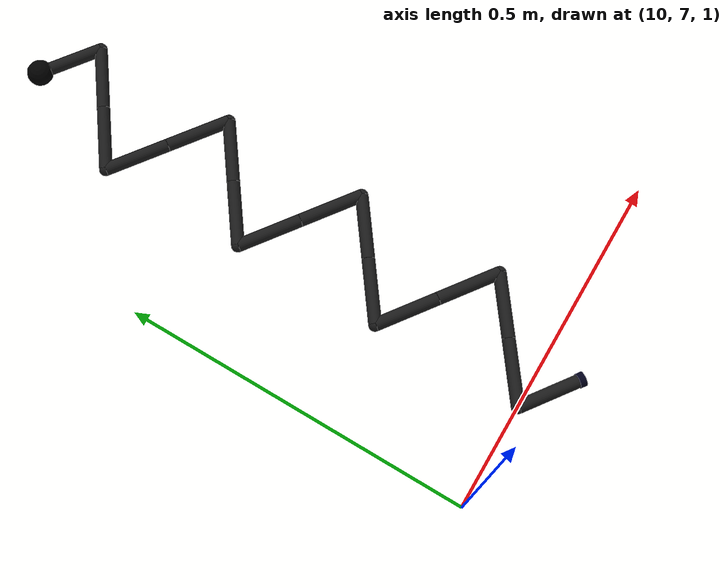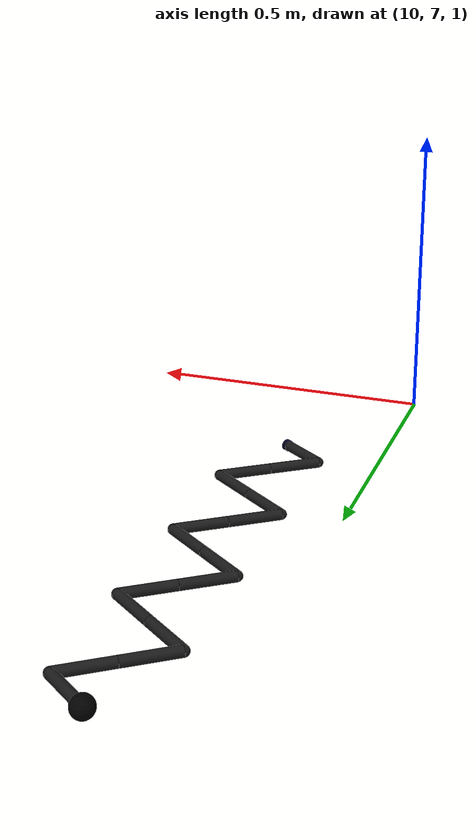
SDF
<sdf version="1.6">
 <world name="SRC_finals">
  <physics type="ode">
   <max_step_size>0.001</max_step_size>
   <real_time_update_rate>1000</real_time_update_rate>
   <simbody>
    <contact><static_friction>0.98</static_friction><dynamic_friction>0.98</dynamic_friction></contact>
   </simbody>
   <ode>
    <constraints>
     <contact_max_correcting_vel>0.3</contact_max_correcting_vel>
     <contact_surface_layer>0.0005</contact_surface_layer>
    </constraints>
   </ode>
  </physics>
  <scene>
   <background>0.968627451 0.690196078 0.384313725 1.0</background>
   <grid>0</grid>
   <origin_visual>0</origin_visual>
  </scene>
  <light type="directional" name="sun">
   <pose>0 0 1000 0.8163941007582858 -1.4697836010784273 0</pose>
   <diffuse>0.8 0.8 0.8 1</diffuse>
   <specular>0.2 0.2 0.2 1</specular>
   <attenuation>
    <range>1000</range>
    <constant>0.9</constant>
    <linear>0.01</linear>
    <quadratic>0.001</quadratic>
   </attenuation>
   <direction>-0.5 0.1 -0.9</direction>
  </light>
  <plugin name="boxT1Start" filename="libBoxContainsPlugin.so">
   <entity>valkyrie</entity>
   <namespace>task1/start</namespace>
   <pose>2.114
        -2.784846821261081e-16
        2.5
        0
        0
        -1.5707963267948968</pose>
   <size>1.524 1 5.0</size>
  </plugin>
  <plugin name="boxT1CP1" filename="libBoxContainsPlugin.so">
   <entity>valkyrie</entity>
   <namespace>task1/checkpoint1</namespace>
   <pose>2.3760000000000003
        0.36199999999999966
        2.5
        0
        0
        1.5707963267948963</pose>
   <size>1 1 5.0</size>
  </plugin>
  <plugin name="boxT1CP4" filename="libBoxContainsPlugin.so">
   <entity>valkyrie</entity>
   <namespace>task1/checkpoint4</namespace>
   <pose>6.186
        -1.0264989470453114e-15
        2.5
        0
        0
        1.5707963267948963</pose>
   <size>3.048 3.048 5.0</size>
  </plugin>
  <plugin name="boxT2Start" filename="libBoxContainsPlugin.so">
   <entity>valkyrie</entity>
   <namespace>task2/start</namespace>
   <pose>6.186000000000001
        2.023999999999999
        2.5
        0
        0
        -2.449293598294706e-16</pose>
   <size>1.524 1 5.0</size>
  </plugin>
  <model name="solar_panel_cable">
   <self_collide>true</self_collide>
   <pose>10.266321618748734
    7.876659606147668
    0.85
    0
    0
    -1.5707963267948968</pose>
   <link name="link_0">
    <inertial><mass>0.05</mass><inertia><ixx>0.0001</ixx><iyy>0.0001</iyy><izz>0.0001</izz></inertia></inertial>
    <visual name="visual">
     <geometry><sphere><radius>0.02</radius></sphere></geometry>
     <material>
      <ambient>0 0 0 1</ambient>
      <emissive>0 0 0 1</emissive>
      <diffuse>0 0 0 1</diffuse>
      <specular>1 1 1 1</specular>
     </material>
    </visual>
   </link>
   <link name="link_1">
    <pose>0.0 0 0 0 1.5707963267948966 0.9424777960769379</pose>
    <inertial>
     <pose>0 0 0.05 0 0 0</pose>
     <mass>0.05</mass>
     <inertia><ixx>0.0001</ixx><iyy>0.0001</iyy><izz>0.0001</izz></inertia>
    </inertial>
    <collision name="cylinder">
     <pose>0 0 0.05 0 0 0</pose>
     <geometry><cylinder><length>0.1</length><radius>0.01</radius></cylinder></geometry>
     <surface>
      <contact><ode><kp>1e5</kp><kd>1</kd><max_vel>0.1</max_vel><min_depth>0.0015</min_depth></ode></contact>
      <friction><ode><mu>1.0</mu><mu2>1.0</mu2></ode></friction>
     </surface>
    </collision>
    <collision name="sphere">
     <geometry><sphere><radius>0.01</radius></sphere></geometry>
     <surface>
      <contact><ode><kp>1e5</kp><kd>1</kd><max_vel>0.1</max_vel><min_depth>0.0015</min_depth></ode></contact>
      <friction><ode><mu>1.0</mu><mu2>1.0</mu2></ode></friction>
     </surface>
    </collision>
    <visual name="cylinder">
     <pose>0 0 0.05 0 0 0</pose>
     <geometry><cylinder><length>0.1</length><radius>0.01</radius></cylinder></geometry>
     <material>
      <ambient>0 0 0 1</ambient>
      <emissive>0 0 0 1</emissive>
      <diffuse>0.1 0.1 0.1 1</diffuse>
      <specular>1 1 1 1</specular>
     </material>
    </visual>
    <visual name="sphere">
     <geometry><sphere><radius>0.01</radius></sphere></geometry>
     <material>
      <ambient>0 0 0 1</ambient>
      <emissive>0 0 0 1</emissive>
      <diffuse>0.1 0.1 0.1 1</diffuse>
      <specular>1 1 1 1</specular>
     </material>
    </visual>
   </link>
   <joint name="joint_1" type="universal">
    <child>link_1</child>
    <parent>link_0</parent>
    <axis>
     <xyz>0 1 0</xyz>
     <limit><lower>-1.5707963267948966</lower><upper>1.5707963267948966</upper></limit>
    </axis>
    <axis2>
     <xyz>-1 0 0</xyz>
     <limit><lower>-1.5707963267948966</lower><upper>1.5707963267948966</upper></limit>
    </axis2>
    <physics><ode><cfm_damping>1</cfm_damping></ode></physics>
   </joint>
   <link name="link_2">
    <pose>0.058778525229247314 0.08090169943749476 0 0 1.5707963267948966 -0.9424777960769379</pose>
    <inertial>
     <pose>0 0 0.05 0 0 0</pose>
     <mass>0.05</mass>
     <inertia><ixx>0.0001</ixx><iyy>0.0001</iyy><izz>0.0001</izz></inertia>
    </inertial>
    <collision name="cylinder">
     <pose>0 0 0.05 0 0 0</pose>
     <geometry><cylinder><length>0.1</length><radius>0.01</radius></cylinder></geometry>
     <surface>
      <contact><ode><kp>1e5</kp><kd>1</kd><max_vel>0.1</max_vel><min_depth>0.0015</min_depth></ode></contact>
      <friction><ode><mu>1.0</mu><mu2>1.0</mu2></ode></friction>
     </surface>
    </collision>
    <collision name="sphere">
     <geometry><sphere><radius>0.01</radius></sphere></geometry>
     <surface>
      <contact><ode><kp>1e5</kp><kd>1</kd><max_vel>0.1</max_vel><min_depth>0.0015</min_depth></ode></contact>
      <friction><ode><mu>1.0</mu><mu2>1.0</mu2></ode></friction>
     </surface>
    </collision>
    <visual name="cylinder">
     <pose>0 0 0.05 0 0 0</pose>
     <geometry><cylinder><length>0.1</length><radius>0.01</radius></cylinder></geometry>
     <material>
      <ambient>0 0 0 1</ambient>
      <emissive>0 0 0 1</emissive>
      <diffuse>0.1 0.1 0.1 1</diffuse>
      <specular>1 1 1 1</specular>
     </material>
    </visual>
    <visual name="sphere">
     <geometry><sphere><radius>0.01</radius></sphere></geometry>
     <material>
      <ambient>0 0 0 1</ambient>
      <emissive>0 0 0 1</emissive>
      <diffuse>0.1 0.1 0.1 1</diffuse>
      <specular>1 1 1 1</specular>
     </material>
    </visual>
   </link>
   <joint name="joint_2" type="universal">
    <child>link_2</child>
    <parent>link_1</parent>
    <axis>
     <xyz>0 1 0</xyz>
     <limit><lower>-1.5707963267948966</lower><upper>1.5707963267948966</upper></limit>
    </axis>
    <axis2>
     <xyz>-1 0 0</xyz>
     <limit><lower>-1.5707963267948966</lower><upper>1.5707963267948966</upper></limit>
    </axis2>
    <physics><ode><cfm_damping>1</cfm_damping></ode></physics>
   </joint>
   <link name="link_3">
    <pose>0.11755705045849463 0 0 0 1.5707963267948966 -0.9424777960769379</pose>
    <inertial>
     <pose>0 0 0.05 0 0 0</pose>
     <mass>0.05</mass>
     <inertia><ixx>0.0001</ixx><iyy>0.0001</iyy><izz>0.0001</izz></inertia>
    </inertial>
    <collision name="cylinder">
     <pose>0 0 0.05 0 0 0</pose>
     <geometry><cylinder><length>0.1</length><radius>0.01</radius></cylinder></geometry>
     <surface>
      <contact><ode><kp>1e5</kp><kd>1</kd><max_vel>0.1</max_vel><min_depth>0.0015</min_depth></ode></contact>
      <friction><ode><mu>1.0</mu><mu2>1.0</mu2></ode></friction>
     </surface>
    </collision>
    <collision name="sphere">
     <geometry><sphere><radius>0.01</radius></sphere></geometry>
     <surface>
      <contact><ode><kp>1e5</kp><kd>1</kd><max_vel>0.1</max_vel><min_depth>0.0015</min_depth></ode></contact>
      <friction><ode><mu>1.0</mu><mu2>1.0</mu2></ode></friction>
     </surface>
    </collision>
    <visual name="cylinder">
     <pose>0 0 0.05 0 0 0</pose>
     <geometry><cylinder><length>0.1</length><radius>0.01</radius></cylinder></geometry>
     <material>
      <ambient>0 0 0 1</ambient>
      <emissive>0 0 0 1</emissive>
      <diffuse>0.1 0.1 0.1 1</diffuse>
      <specular>1 1 1 1</specular>
     </material>
    </visual>
    <visual name="sphere">
     <geometry><sphere><radius>0.01</radius></sphere></geometry>
     <material>
      <ambient>0 0 0 1</ambient>
      <emissive>0 0 0 1</emissive>
      <diffuse>0.1 0.1 0.1 1</diffuse>
      <specular>1 1 1 1</specular>
     </material>
    </visual>
   </link>
   <joint name="joint_3" type="universal">
    <child>link_3</child>
    <parent>link_2</parent>
    <axis>
     <xyz>0 1 0</xyz>
     <limit><lower>-1.5707963267948966</lower><upper>1.5707963267948966</upper></limit>
    </axis>
    <axis2>
     <xyz>-1 0 0</xyz>
     <limit><lower>-1.5707963267948966</lower><upper>1.5707963267948966</upper></limit>
    </axis2>
    <physics><ode><cfm_damping>1</cfm_damping></ode></physics>
   </joint>
   <link name="link_4">
    <pose>0.17633557568774197 -0.08090169943749476 0 0 1.5707963267948966 0.9424777960769379</pose>
    <inertial>
     <pose>0 0 0.05 0 0 0</pose>
     <mass>0.05</mass>
     <inertia><ixx>0.0001</ixx><iyy>0.0001</iyy><izz>0.0001</izz></inertia>
    </inertial>
    <collision name="cylinder">
     <pose>0 0 0.05 0 0 0</pose>
     <geometry><cylinder><length>0.1</length><radius>0.01</radius></cylinder></geometry>
     <surface>
      <contact><ode><kp>1e5</kp><kd>1</kd><max_vel>0.1</max_vel><min_depth>0.0015</min_depth></ode></contact>
      <friction><ode><mu>1.0</mu><mu2>1.0</mu2></ode></friction>
     </surface>
    </collision>
    <collision name="sphere">
     <geometry><sphere><radius>0.01</radius></sphere></geometry>
     <surface>
      <contact><ode><kp>1e5</kp><kd>1</kd><max_vel>0.1</max_vel><min_depth>0.0015</min_depth></ode></contact>
      <friction><ode><mu>1.0</mu><mu2>1.0</mu2></ode></friction>
     </surface>
    </collision>
    <visual name="cylinder">
     <pose>0 0 0.05 0 0 0</pose>
     <geometry><cylinder><length>0.1</length><radius>0.01</radius></cylinder></geometry>
     <material>
      <ambient>0 0 0 1</ambient>
      <emissive>0 0 0 1</emissive>
      <diffuse>0.1 0.1 0.1 1</diffuse>
      <specular>1 1 1 1</specular>
     </material>
    </visual>
    <visual name="sphere">
     <geometry><sphere><radius>0.01</radius></sphere></geometry>
     <material>
      <ambient>0 0 0 1</ambient>
      <emissive>0 0 0 1</emissive>
      <diffuse>0.1 0.1 0.1 1</diffuse>
      <specular>1 1 1 1</specular>
     </material>
    </visual>
   </link>
   <joint name="joint_4" type="universal">
    <child>link_4</child>
    <parent>link_3</parent>
    <axis>
     <xyz>0 1 0</xyz>
     <limit><lower>-1.5707963267948966</lower><upper>1.5707963267948966</upper></limit>
    </axis>
    <axis2>
     <xyz>-1 0 0</xyz>
     <limit><lower>-1.5707963267948966</lower><upper>1.5707963267948966</upper></limit>
    </axis2>
    <physics><ode><cfm_damping>1</cfm_damping></ode></physics>
   </joint>
   <link name="link_5">
    <pose>0.23511410091698925 0 0 0 1.5707963267948966 0.9424777960769379</pose>
    <inertial>
     <pose>0 0 0.05 0 0 0</pose>
     <mass>0.05</mass>
     <inertia><ixx>0.0001</ixx><iyy>0.0001</iyy><izz>0.0001</izz></inertia>
    </inertial>
    <collision name="cylinder">
     <pose>0 0 0.05 0 0 0</pose>
     <geometry><cylinder><length>0.1</length><radius>0.01</radius></cylinder></geometry>
     <surface>
      <contact><ode><kp>1e5</kp><kd>1</kd><max_vel>0.1</max_vel><min_depth>0.0015</min_depth></ode></contact>
      <friction><ode><mu>1.0</mu><mu2>1.0</mu2></ode></friction>
     </surface>
    </collision>
    <collision name="sphere">
     <geometry><sphere><radius>0.01</radius></sphere></geometry>
     <surface>
      <contact><ode><kp>1e5</kp><kd>1</kd><max_vel>0.1</max_vel><min_depth>0.0015</min_depth></ode></contact>
      <friction><ode><mu>1.0</mu><mu2>1.0</mu2></ode></friction>
     </surface>
    </collision>
    <visual name="cylinder">
     <pose>0 0 0.05 0 0 0</pose>
     <geometry><cylinder><length>0.1</length><radius>0.01</radius></cylinder></geometry>
     <material>
      <ambient>0 0 0 1</ambient>
      <emissive>0 0 0 1</emissive>
      <diffuse>0.1 0.1 0.1 1</diffuse>
      <specular>1 1 1 1</specular>
     </material>
    </visual>
    <visual name="sphere">
     <geometry><sphere><radius>0.01</radius></sphere></geometry>
     <material>
      <ambient>0 0 0 1</ambient>
      <emissive>0 0 0 1</emissive>
      <diffuse>0.1 0.1 0.1 1</diffuse>
      <specular>1 1 1 1</specular>
     </material>
    </visual>
   </link>
   <joint name="joint_5" type="universal">
    <child>link_5</child>
    <parent>link_4</parent>
    <axis>
     <xyz>0 1 0</xyz>
     <limit><lower>-1.5707963267948966</lower><upper>1.5707963267948966</upper></limit>
    </axis>
    <axis2>
     <xyz>-1 0 0</xyz>
     <limit><lower>-1.5707963267948966</lower><upper>1.5707963267948966</upper></limit>
    </axis2>
    <physics><ode><cfm_damping>1</cfm_damping></ode></physics>
   </joint>
   <link name="link_6">
    <pose>0.29389262614623657 0.08090169943749476 0 0 1.5707963267948966 -0.9424777960769379</pose>
    <inertial>
     <pose>0 0 0.05 0 0 0</pose>
     <mass>0.05</mass>
     <inertia><ixx>0.0001</ixx><iyy>0.0001</iyy><izz>0.0001</izz></inertia>
    </inertial>
    <collision name="cylinder">
     <pose>0 0 0.05 0 0 0</pose>
     <geometry><cylinder><length>0.1</length><radius>0.01</radius></cylinder></geometry>
     <surface>
      <contact><ode><kp>1e5</kp><kd>1</kd><max_vel>0.1</max_vel><min_depth>0.0015</min_depth></ode></contact>
      <friction><ode><mu>1.0</mu><mu2>1.0</mu2></ode></friction>
     </surface>
    </collision>
    <collision name="sphere">
     <geometry><sphere><radius>0.01</radius></sphere></geometry>
     <surface>
      <contact><ode><kp>1e5</kp><kd>1</kd><max_vel>0.1</max_vel><min_depth>0.0015</min_depth></ode></contact>
      <friction><ode><mu>1.0</mu><mu2>1.0</mu2></ode></friction>
     </surface>
    </collision>
    <visual name="cylinder">
     <pose>0 0 0.05 0 0 0</pose>
     <geometry><cylinder><length>0.1</length><radius>0.01</radius></cylinder></geometry>
     <material>
      <ambient>0 0 0 1</ambient>
      <emissive>0 0 0 1</emissive>
      <diffuse>0.1 0.1 0.1 1</diffuse>
      <specular>1 1 1 1</specular>
     </material>
    </visual>
    <visual name="sphere">
     <geometry><sphere><radius>0.01</radius></sphere></geometry>
     <material>
      <ambient>0 0 0 1</ambient>
      <emissive>0 0 0 1</emissive>
      <diffuse>0.1 0.1 0.1 1</diffuse>
      <specular>1 1 1 1</specular>
     </material>
    </visual>
   </link>
   <joint name="joint_6" type="universal">
    <child>link_6</child>
    <parent>link_5</parent>
    <axis>
     <xyz>0 1 0</xyz>
     <limit><lower>-1.5707963267948966</lower><upper>1.5707963267948966</upper></limit>
    </axis>
    <axis2>
     <xyz>-1 0 0</xyz>
     <limit><lower>-1.5707963267948966</lower><upper>1.5707963267948966</upper></limit>
    </axis2>
    <physics><ode><cfm_damping>1</cfm_damping></ode></physics>
   </joint>
   <link name="link_7">
    <pose>0.35267115137548394 0 0 0 1.5707963267948966 -0.9424777960769379</pose>
    <inertial>
     <pose>0 0 0.05 0 0 0</pose>
     <mass>0.05</mass>
     <inertia><ixx>0.0001</ixx><iyy>0.0001</iyy><izz>0.0001</izz></inertia>
    </inertial>
    <collision name="cylinder">
     <pose>0 0 0.05 0 0 0</pose>
     <geometry><cylinder><length>0.1</length><radius>0.01</radius></cylinder></geometry>
     <surface>
      <contact><ode><kp>1e5</kp><kd>1</kd><max_vel>0.1</max_vel><min_depth>0.0015</min_depth></ode></contact>
      <friction><ode><mu>1.0</mu><mu2>1.0</mu2></ode></friction>
     </surface>
    </collision>
    <collision name="sphere">
     <geometry><sphere><radius>0.01</radius></sphere></geometry>
     <surface>
      <contact><ode><kp>1e5</kp><kd>1</kd><max_vel>0.1</max_vel><min_depth>0.0015</min_depth></ode></contact>
      <friction><ode><mu>1.0</mu><mu2>1.0</mu2></ode></friction>
     </surface>
    </collision>
    <visual name="cylinder">
     <pose>0 0 0.05 0 0 0</pose>
     <geometry><cylinder><length>0.1</length><radius>0.01</radius></cylinder></geometry>
     <material>
      <ambient>0 0 0 1</ambient>
      <emissive>0 0 0 1</emissive>
      <diffuse>0.1 0.1 0.1 1</diffuse>
      <specular>1 1 1 1</specular>
     </material>
    </visual>
    <visual name="sphere">
     <geometry><sphere><radius>0.01</radius></sphere></geometry>
     <material>
      <ambient>0 0 0 1</ambient>
      <emissive>0 0 0 1</emissive>
      <diffuse>0.1 0.1 0.1 1</diffuse>
      <specular>1 1 1 1</specular>
     </material>
    </visual>
   </link>
   <joint name="joint_7" type="universal">
    <child>link_7</child>
    <parent>link_6</parent>
    <axis>
     <xyz>0 1 0</xyz>
     <limit><lower>-1.5707963267948966</lower><upper>1.5707963267948966</upper></limit>
    </axis>
    <axis2>
     <xyz>-1 0 0</xyz>
     <limit><lower>-1.5707963267948966</lower><upper>1.5707963267948966</upper></limit>
    </axis2>
    <physics><ode><cfm_damping>1</cfm_damping></ode></physics>
   </joint>
   <link name="link_8">
    <pose>0.41144967660473125 -0.08090169943749476 0 0 1.5707963267948966 0.9424777960769379</pose>
    <inertial>
     <pose>0 0 0.05 0 0 0</pose>
     <mass>0.05</mass>
     <inertia><ixx>0.0001</ixx><iyy>0.0001</iyy><izz>0.0001</izz></inertia>
    </inertial>
    <collision name="cylinder">
     <pose>0 0 0.05 0 0 0</pose>
     <geometry><cylinder><length>0.1</length><radius>0.01</radius></cylinder></geometry>
     <surface>
      <contact><ode><kp>1e5</kp><kd>1</kd><max_vel>0.1</max_vel><min_depth>0.0015</min_depth></ode></contact>
      <friction><ode><mu>1.0</mu><mu2>1.0</mu2></ode></friction>
     </surface>
    </collision>
    <collision name="sphere">
     <geometry><sphere><radius>0.01</radius></sphere></geometry>
     <surface>
      <contact><ode><kp>1e5</kp><kd>1</kd><max_vel>0.1</max_vel><min_depth>0.0015</min_depth></ode></contact>
      <friction><ode><mu>1.0</mu><mu2>1.0</mu2></ode></friction>
     </surface>
    </collision>
    <visual name="cylinder">
     <pose>0 0 0.05 0 0 0</pose>
     <geometry><cylinder><length>0.1</length><radius>0.01</radius></cylinder></geometry>
     <material>
      <ambient>0 0 0 1</ambient>
      <emissive>0 0 0 1</emissive>
      <diffuse>0.1 0.1 0.1 1</diffuse>
      <specular>1 1 1 1</specular>
     </material>
    </visual>
    <visual name="sphere">
     <geometry><sphere><radius>0.01</radius></sphere></geometry>
     <material>
      <ambient>0 0 0 1</ambient>
      <emissive>0 0 0 1</emissive>
      <diffuse>0.1 0.1 0.1 1</diffuse>
      <specular>1 1 1 1</specular>
     </material>
    </visual>
   </link>
   <joint name="joint_8" type="universal">
    <child>link_8</child>
    <parent>link_7</parent>
    <axis>
     <xyz>0 1 0</xyz>
     <limit><lower>-1.5707963267948966</lower><upper>1.5707963267948966</upper></limit>
    </axis>
    <axis2>
     <xyz>-1 0 0</xyz>
     <limit><lower>-1.5707963267948966</lower><upper>1.5707963267948966</upper></limit>
    </axis2>
    <physics><ode><cfm_damping>1</cfm_damping></ode></physics>
   </joint>
   <link name="link_9">
    <pose>0.4702282018339785 0 0 0 1.5707963267948966 0.9424777960769379</pose>
    <inertial>
     <pose>0 0 0.05 0 0 0</pose>
     <mass>0.05</mass>
     <inertia><ixx>0.0001</ixx><iyy>0.0001</iyy><izz>0.0001</izz></inertia>
    </inertial>
    <collision name="cylinder">
     <pose>0 0 0.05 0 0 0</pose>
     <geometry><cylinder><length>0.1</length><radius>0.01</radius></cylinder></geometry>
     <surface>
      <contact><ode><kp>1e5</kp><kd>1</kd><max_vel>0.1</max_vel><min_depth>0.0015</min_depth></ode></contact>
      <friction><ode><mu>1.0</mu><mu2>1.0</mu2></ode></friction>
     </surface>
    </collision>
    <collision name="sphere">
     <geometry><sphere><radius>0.01</radius></sphere></geometry>
     <surface>
      <contact><ode><kp>1e5</kp><kd>1</kd><max_vel>0.1</max_vel><min_depth>0.0015</min_depth></ode></contact>
      <friction><ode><mu>1.0</mu><mu2>1.0</mu2></ode></friction>
     </surface>
    </collision>
    <visual name="cylinder">
     <pose>0 0 0.05 0 0 0</pose>
     <geometry><cylinder><length>0.1</length><radius>0.01</radius></cylinder></geometry>
     <material>
      <ambient>0 0 0 1</ambient>
      <emissive>0 0 0 1</emissive>
      <diffuse>0.1 0.1 0.1 1</diffuse>
      <specular>1 1 1 1</specular>
     </material>
    </visual>
    <visual name="sphere">
     <geometry><sphere><radius>0.01</radius></sphere></geometry>
     <material>
      <ambient>0 0 0 1</ambient>
      <emissive>0 0 0 1</emissive>
      <diffuse>0.1 0.1 0.1 1</diffuse>
      <specular>1 1 1 1</specular>
     </material>
    </visual>
   </link>
   <joint name="joint_9" type="universal">
    <child>link_9</child>
    <parent>link_8</parent>
    <axis>
     <xyz>0 1 0</xyz>
     <limit><lower>-1.5707963267948966</lower><upper>1.5707963267948966</upper></limit>
    </axis>
    <axis2>
     <xyz>-1 0 0</xyz>
     <limit><lower>-1.5707963267948966</lower><upper>1.5707963267948966</upper></limit>
    </axis2>
    <physics><ode><cfm_damping>1</cfm_damping></ode></physics>
   </joint>
   <link name="link_10">
    <pose>0.5290067270632258 0.08090169943749476 0 0 1.5707963267948966 -0.9424777960769379</pose>
    <inertial>
     <pose>0 0 0.05 0 0 0</pose>
     <mass>0.05</mass>
     <inertia><ixx>0.0001</ixx><iyy>0.0001</iyy><izz>0.0001</izz></inertia>
    </inertial>
    <collision name="cylinder">
     <pose>0 0 0.05 0 0 0</pose>
     <geometry><cylinder><length>0.1</length><radius>0.01</radius></cylinder></geometry>
     <surface>
      <contact><ode><kp>1e5</kp><kd>1</kd><max_vel>0.1</max_vel><min_depth>0.0015</min_depth></ode></contact>
      <friction><ode><mu>1.0</mu><mu2>1.0</mu2></ode></friction>
     </surface>
    </collision>
    <collision name="sphere">
     <geometry><sphere><radius>0.01</radius></sphere></geometry>
     <surface>
      <contact><ode><kp>1e5</kp><kd>1</kd><max_vel>0.1</max_vel><min_depth>0.0015</min_depth></ode></contact>
      <friction><ode><mu>1.0</mu><mu2>1.0</mu2></ode></friction>
     </surface>
    </collision>
    <visual name="cylinder">
     <pose>0 0 0.05 0 0 0</pose>
     <geometry><cylinder><length>0.1</length><radius>0.01</radius></cylinder></geometry>
     <material>
      <ambient>0 0 0 1</ambient>
      <emissive>0 0 0 1</emissive>
      <diffuse>0.1 0.1 0.1 1</diffuse>
      <specular>1 1 1 1</specular>
     </material>
    </visual>
    <visual name="sphere">
     <geometry><sphere><radius>0.01</radius></sphere></geometry>
     <material>
      <ambient>0 0 0 1</ambient>
      <emissive>0 0 0 1</emissive>
      <diffuse>0.1 0.1 0.1 1</diffuse>
      <specular>1 1 1 1</specular>
     </material>
    </visual>
   </link>
   <joint name="joint_10" type="universal">
    <child>link_10</child>
    <parent>link_9</parent>
    <axis>
     <xyz>0 1 0</xyz>
     <limit><lower>-1.5707963267948966</lower><upper>1.5707963267948966</upper></limit>
    </axis>
    <axis2>
     <xyz>-1 0 0</xyz>
     <limit><lower>-1.5707963267948966</lower><upper>1.5707963267948966</upper></limit>
    </axis2>
    <physics><ode><cfm_damping>1</cfm_damping></ode></physics>
   </joint>
   <link name="link_11">
    <pose>0.5877852522924731 0 0 0 1.5707963267948966 -0.9424777960769379</pose>
    <inertial>
     <pose>0 0 0.05 0 0 0</pose>
     <mass>0.05</mass>
     <inertia><ixx>0.0001</ixx><iyy>0.0001</iyy><izz>0.0001</izz></inertia>
    </inertial>
    <collision name="cylinder">
     <pose>0 0 0.05 0 0 0</pose>
     <geometry><cylinder><length>0.1</length><radius>0.01</radius></cylinder></geometry>
     <surface>
      <contact><ode><kp>1e5</kp><kd>1</kd><max_vel>0.1</max_vel><min_depth>0.0015</min_depth></ode></contact>
      <friction><ode><mu>1.0</mu><mu2>1.0</mu2></ode></friction>
     </surface>
    </collision>
    <collision name="sphere">
     <geometry><sphere><radius>0.01</radius></sphere></geometry>
     <surface>
      <contact><ode><kp>1e5</kp><kd>1</kd><max_vel>0.1</max_vel><min_depth>0.0015</min_depth></ode></contact>
      <friction><ode><mu>1.0</mu><mu2>1.0</mu2></ode></friction>
     </surface>
    </collision>
    <visual name="cylinder">
     <pose>0 0 0.05 0 0 0</pose>
     <geometry><cylinder><length>0.1</length><radius>0.01</radius></cylinder></geometry>
     <material>
      <ambient>0 0 0 1</ambient>
      <emissive>0 0 0 1</emissive>
      <diffuse>0.1 0.1 0.1 1</diffuse>
      <specular>1 1 1 1</specular>
     </material>
    </visual>
    <visual name="sphere">
     <geometry><sphere><radius>0.01</radius></sphere></geometry>
     <material>
      <ambient>0 0 0 1</ambient>
      <emissive>0 0 0 1</emissive>
      <diffuse>0.1 0.1 0.1 1</diffuse>
      <specular>1 1 1 1</specular>
     </material>
    </visual>
   </link>
   <joint name="joint_11" type="universal">
    <child>link_11</child>
    <parent>link_10</parent>
    <axis>
     <xyz>0 1 0</xyz>
     <limit><lower>-1.5707963267948966</lower><upper>1.5707963267948966</upper></limit>
    </axis>
    <axis2>
     <xyz>-1 0 0</xyz>
     <limit><lower>-1.5707963267948966</lower><upper>1.5707963267948966</upper></limit>
    </axis2>
    <physics><ode><cfm_damping>1</cfm_damping></ode></physics>
   </joint>
   <link name="link_12">
    <pose>0.6465637775217205 -0.08090169943749476 0 0 1.5707963267948966 0.9424777960769379</pose>
    <inertial>
     <pose>0 0 0.05 0 0 0</pose>
     <mass>0.05</mass>
     <inertia><ixx>0.0001</ixx><iyy>0.0001</iyy><izz>0.0001</izz></inertia>
    </inertial>
    <collision name="cylinder">
     <pose>0 0 0.05 0 0 0</pose>
     <geometry><cylinder><length>0.1</length><radius>0.01</radius></cylinder></geometry>
     <surface>
      <contact><ode><kp>1e5</kp><kd>1</kd><max_vel>0.1</max_vel><min_depth>0.0015</min_depth></ode></contact>
      <friction><ode><mu>1.0</mu><mu2>1.0</mu2></ode></friction>
     </surface>
    </collision>
    <collision name="sphere">
     <geometry><sphere><radius>0.01</radius></sphere></geometry>
     <surface>
      <contact><ode><kp>1e5</kp><kd>1</kd><max_vel>0.1</max_vel><min_depth>0.0015</min_depth></ode></contact>
      <friction><ode><mu>1.0</mu><mu2>1.0</mu2></ode></friction>
     </surface>
    </collision>
    <visual name="cylinder">
     <pose>0 0 0.05 0 0 0</pose>
     <geometry><cylinder><length>0.1</length><radius>0.01</radius></cylinder></geometry>
     <material>
      <ambient>0 0 0 1</ambient>
      <emissive>0 0 0 1</emissive>
      <diffuse>0.1 0.1 0.1 1</diffuse>
      <specular>1 1 1 1</specular>
     </material>
    </visual>
    <visual name="sphere">
     <geometry><sphere><radius>0.01</radius></sphere></geometry>
     <material>
      <ambient>0 0 0 1</ambient>
      <emissive>0 0 0 1</emissive>
      <diffuse>0.1 0.1 0.1 1</diffuse>
      <specular>1 1 1 1</specular>
     </material>
    </visual>
   </link>
   <joint name="joint_12" type="universal">
    <child>link_12</child>
    <parent>link_11</parent>
    <axis>
     <xyz>0 1 0</xyz>
     <limit><lower>-1.5707963267948966</lower><upper>1.5707963267948966</upper></limit>
    </axis>
    <axis2>
     <xyz>-1 0 0</xyz>
     <limit><lower>-1.5707963267948966</lower><upper>1.5707963267948966</upper></limit>
    </axis2>
    <physics><ode><cfm_damping>1</cfm_damping></ode></physics>
   </joint>
   <link name="link_13">
    <pose>0.7053423027509679 0 0 0 1.5707963267948966 0.9424777960769379</pose>
    <inertial>
     <pose>0 0 0.05 0 0 0</pose>
     <mass>0.05</mass>
     <inertia><ixx>0.0001</ixx><iyy>0.0001</iyy><izz>0.0001</izz></inertia>
    </inertial>
    <collision name="cylinder">
     <pose>0 0 0.05 0 0 0</pose>
     <geometry><cylinder><length>0.1</length><radius>0.01</radius></cylinder></geometry>
     <surface>
      <contact><ode><kp>1e5</kp><kd>1</kd><max_vel>0.1</max_vel><min_depth>0.0015</min_depth></ode></contact>
      <friction><ode><mu>1.0</mu><mu2>1.0</mu2></ode></friction>
     </surface>
    </collision>
    <collision name="sphere">
     <geometry><sphere><radius>0.01</radius></sphere></geometry>
     <surface>
      <contact><ode><kp>1e5</kp><kd>1</kd><max_vel>0.1</max_vel><min_depth>0.0015</min_depth></ode></contact>
      <friction><ode><mu>1.0</mu><mu2>1.0</mu2></ode></friction>
     </surface>
    </collision>
    <visual name="cylinder">
     <pose>0 0 0.05 0 0 0</pose>
     <geometry><cylinder><length>0.1</length><radius>0.01</radius></cylinder></geometry>
     <material>
      <ambient>0 0 0 1</ambient>
      <emissive>0 0 0 1</emissive>
      <diffuse>0.1 0.1 0.1 1</diffuse>
      <specular>1 1 1 1</specular>
     </material>
    </visual>
    <visual name="sphere">
     <geometry><sphere><radius>0.01</radius></sphere></geometry>
     <material>
      <ambient>0 0 0 1</ambient>
      <emissive>0 0 0 1</emissive>
      <diffuse>0.1 0.1 0.1 1</diffuse>
      <specular>1 1 1 1</specular>
     </material>
    </visual>
   </link>
   <joint name="joint_13" type="universal">
    <child>link_13</child>
    <parent>link_12</parent>
    <axis>
     <xyz>0 1 0</xyz>
     <limit><lower>-1.5707963267948966</lower><upper>1.5707963267948966</upper></limit>
    </axis>
    <axis2>
     <xyz>-1 0 0</xyz>
     <limit><lower>-1.5707963267948966</lower><upper>1.5707963267948966</upper></limit>
    </axis2>
    <physics><ode><cfm_damping>1</cfm_damping></ode></physics>
   </joint>
   <link name="link_14">
    <pose>0.7641208279802151 0.08090169943749476 0 0 1.5707963267948966 -0.9424777960769379</pose>
    <inertial>
     <pose>0 0 0.05 0 0 0</pose>
     <mass>0.05</mass>
     <inertia><ixx>0.0001</ixx><iyy>0.0001</iyy><izz>0.0001</izz></inertia>
    </inertial>
    <collision name="cylinder">
     <pose>0 0 0.05 0 0 0</pose>
     <geometry><cylinder><length>0.1</length><radius>0.01</radius></cylinder></geometry>
     <surface>
      <contact><ode><kp>1e5</kp><kd>1</kd><max_vel>0.1</max_vel><min_depth>0.0015</min_depth></ode></contact>
      <friction><ode><mu>1.0</mu><mu2>1.0</mu2></ode></friction>
     </surface>
    </collision>
    <collision name="sphere">
     <geometry><sphere><radius>0.01</radius></sphere></geometry>
     <surface>
      <contact><ode><kp>1e5</kp><kd>1</kd><max_vel>0.1</max_vel><min_depth>0.0015</min_depth></ode></contact>
      <friction><ode><mu>1.0</mu><mu2>1.0</mu2></ode></friction>
     </surface>
    </collision>
    <visual name="cylinder">
     <pose>0 0 0.05 0 0 0</pose>
     <geometry><cylinder><length>0.1</length><radius>0.01</radius></cylinder></geometry>
     <material>
      <ambient>0 0 0 1</ambient>
      <emissive>0 0 0 1</emissive>
      <diffuse>0.1 0.1 0.1 1</diffuse>
      <specular>1 1 1 1</specular>
     </material>
    </visual>
    <visual name="sphere">
     <geometry><sphere><radius>0.01</radius></sphere></geometry>
     <material>
      <ambient>0 0 0 1</ambient>
      <emissive>0 0 0 1</emissive>
      <diffuse>0.1 0.1 0.1 1</diffuse>
      <specular>1 1 1 1</specular>
     </material>
    </visual>
   </link>
   <joint name="joint_14" type="universal">
    <child>link_14</child>
    <parent>link_13</parent>
    <axis>
     <xyz>0 1 0</xyz>
     <limit><lower>-1.5707963267948966</lower><upper>1.5707963267948966</upper></limit>
    </axis>
    <axis2>
     <xyz>-1 0 0</xyz>
     <limit><lower>-1.5707963267948966</lower><upper>1.5707963267948966</upper></limit>
    </axis2>
    <physics><ode><cfm_damping>1</cfm_damping></ode></physics>
   </joint>
   <link name="link_15">
    <pose>0.8228993532094625 0 0 0 1.5707963267948966 -0.9424777960769379</pose>
    <inertial>
     <pose>0 0 0.05 0 0 0</pose>
     <mass>0.05</mass>
     <inertia><ixx>0.0001</ixx><iyy>0.0001</iyy><izz>0.0001</izz></inertia>
    </inertial>
    <collision name="cylinder">
     <pose>0 0 0.05 0 0 0</pose>
     <geometry><cylinder><length>0.1</length><radius>0.01</radius></cylinder></geometry>
     <surface>
      <contact><ode><kp>1e5</kp><kd>1</kd><max_vel>0.1</max_vel><min_depth>0.0015</min_depth></ode></contact>
      <friction><ode><mu>1.0</mu><mu2>1.0</mu2></ode></friction>
     </surface>
    </collision>
    <collision name="sphere">
     <geometry><sphere><radius>0.01</radius></sphere></geometry>
     <surface>
      <contact><ode><kp>1e5</kp><kd>1</kd><max_vel>0.1</max_vel><min_depth>0.0015</min_depth></ode></contact>
      <friction><ode><mu>1.0</mu><mu2>1.0</mu2></ode></friction>
     </surface>
    </collision>
    <visual name="cylinder">
     <pose>0 0 0.05 0 0 0</pose>
     <geometry><cylinder><length>0.1</length><radius>0.01</radius></cylinder></geometry>
     <material>
      <ambient>0 0 0 1</ambient>
      <emissive>0 0 0 1</emissive>
      <diffuse>0.1 0.1 0.1 1</diffuse>
      <specular>1 1 1 1</specular>
     </material>
    </visual>
    <visual name="sphere">
     <geometry><sphere><radius>0.01</radius></sphere></geometry>
     <material>
      <ambient>0 0 0 1</ambient>
      <emissive>0 0 0 1</emissive>
      <diffuse>0.1 0.1 0.1 1</diffuse>
      <specular>1 1 1 1</specular>
     </material>
    </visual>
   </link>
   <joint name="joint_15" type="universal">
    <child>link_15</child>
    <parent>link_14</parent>
    <axis>
     <xyz>0 1 0</xyz>
     <limit><lower>-1.5707963267948966</lower><upper>1.5707963267948966</upper></limit>
    </axis>
    <axis2>
     <xyz>-1 0 0</xyz>
     <limit><lower>-1.5707963267948966</lower><upper>1.5707963267948966</upper></limit>
    </axis2>
    <physics><ode><cfm_damping>1</cfm_damping></ode></physics>
   </joint>
   <link name="link_16">
    <pose>0.8816778784387097 -0.08090169943749476 0 0 1.5707963267948966 0.9424777960769379</pose>
    <inertial>
     <pose>0 0 0.05 0 0 0</pose>
     <mass>0.05</mass>
     <inertia><ixx>0.0001</ixx><iyy>0.0001</iyy><izz>0.0001</izz></inertia>
    </inertial>
    <collision name="cylinder">
     <pose>0 0 0.05 0 0 0</pose>
     <geometry><cylinder><length>0.1</length><radius>0.01</radius></cylinder></geometry>
     <surface>
      <contact><ode><kp>1e5</kp><kd>1</kd><max_vel>0.1</max_vel><min_depth>0.0015</min_depth></ode></contact>
      <friction><ode><mu>1.0</mu><mu2>1.0</mu2></ode></friction>
     </surface>
    </collision>
    <collision name="sphere">
     <geometry><sphere><radius>0.01</radius></sphere></geometry>
     <surface>
      <contact><ode><kp>1e5</kp><kd>1</kd><max_vel>0.1</max_vel><min_depth>0.0015</min_depth></ode></contact>
      <friction><ode><mu>1.0</mu><mu2>1.0</mu2></ode></friction>
     </surface>
    </collision>
    <visual name="cylinder">
     <pose>0 0 0.05 0 0 0</pose>
     <geometry><cylinder><length>0.1</length><radius>0.01</radius></cylinder></geometry>
     <material>
      <ambient>0 0 0 1</ambient>
      <emissive>0 0 0 1</emissive>
      <diffuse>0.1 0.1 0.1 1</diffuse>
      <specular>1 1 1 1</specular>
     </material>
    </visual>
    <visual name="sphere">
     <geometry><sphere><radius>0.01</radius></sphere></geometry>
     <material>
      <ambient>0 0 0 1</ambient>
      <emissive>0 0 0 1</emissive>
      <diffuse>0.1 0.1 0.1 1</diffuse>
      <specular>1 1 1 1</specular>
     </material>
    </visual>
    <collision name="plug_collision">
     <pose>0 0 0.1 0 0 0</pose>
     <geometry>
      <cylinder><length>0.010000000000000002</length><radius>0.011000000000000001</radius></cylinder>
     </geometry>
     <surface>
      <contact><ode><kp>1e5</kp><kd>1</kd><max_vel>0.1</max_vel><min_depth>0.0015</min_depth></ode></contact>
      <friction><ode><mu>1.0</mu><mu2>1.0</mu2></ode></friction>
     </surface>
    </collision>
    <visual name="plug_visual">
     <pose>0 0 0.1 0 0 0</pose>
     <geometry>
      <cylinder><length>0.010000000000000002</length><radius>0.011000000000000001</radius></cylinder>
     </geometry>
     <material>
      <ambient>0 0 0.3 1</ambient>
      <emissive>0 0 0.2 1</emissive>
      <diffuse>0 0 0.1 1</diffuse>
      <specular>1 1 1 1</specular>
     </material>
    </visual>
    <sensor name="tip_sensor" type="contact">
     <contact>
      <collision>plug_collision</collision>
      <collision>cylinder</collision>
      <collision>sphere</collision>
     </contact>
    </sensor>
   </link>
   <joint name="joint_16" type="universal">
    <child>link_16</child>
    <parent>link_15</parent>
    <axis>
     <xyz>0 1 0</xyz>
     <limit><lower>-1.5707963267948966</lower><upper>1.5707963267948966</upper></limit>
    </axis>
    <axis2>
     <xyz>-1 0 0</xyz>
     <limit><lower>-1.5707963267948966</lower><upper>1.5707963267948966</upper></limit>
    </axis2>
    <physics><ode><cfm_damping>1</cfm_damping></ode></physics>
   </joint>
   <joint name="world" type="fixed"><child>link_0</child><parent>world</parent></joint>
   <plugin name="touch_valkyrie_cable" filename="libTouchPlugin.so">
    <sensor>tip_sensor</sensor>
    <target>valkyrie</target>
    <time>0.5</time>
    <namespace>task2/checkpoint4</namespace>
   </plugin>
  </model>
  <plugin name="boxT2CP2" filename="libBoxContainsPlugin.so">
   <entity>solar_panel</entity>
   <namespace>task2/checkpoint2</namespace>
   <pose>9.866321618748733
        7.2766596061476685
        0.9
        0
        0
        -2.83276944882399e-16</pose>
   <size>1.47 0.95 0.45</size>
  </plugin>
  <plugin name="boxT2CP6" filename="libBoxContainsPlugin.so">
   <entity>valkyrie</entity>
   <namespace>task2/checkpoint6</namespace>
   <pose>13.006686353277031
        7.581760432675967
        2.5
        0
        0
        -2.3561944901923453</pose>
   <size>3.048 3.048 5.0</size>
  </plugin>
  <plugin name="boxT3Start" filename="libBoxContainsPlugin.so">
   <entity>valkyrie</entity>
   <namespace>task3/start</namespace>
   <pose>14.437870478398603
        9.012944557797539
        2.5
        0
        0
        -0.7853981633974485</pose>
   <size>1.524 1 5.0</size>
  </plugin>
  <plugin name="boxT3CP1" filename="libBoxContainsPlugin.so">
   <entity>valkyrie</entity>
   <namespace>task3/checkpoint1</namespace>
   <pose>17.000559682509724
        13.07153931926226
        2.92
        0
        0
        0.7853981633974481</pose>
   <size>1.0 2.50 2.44</size>
  </plugin>
  <plugin name="boxT3CP3" filename="libBoxContainsPlugin.so">
   <entity>valkyrie</entity>
   <namespace>task3/checkpoint3</namespace>
   <pose>20.762226337065922
        13.75022040784511
        2.81
        0
        0
        -0.7853981633974485</pose>
   <size>1.00 1.55 2.88</size>
  </plugin>
  <light name="habitat_lamp" type="spot">
   <pose>20.449826561137705
        14.371201583083135
        4.2
        -1.462
        0
        0.7853981633974481</pose>
   <diffuse>1 1 1 1</diffuse>
   <specular>0.1 0.1 0.1 1</specular>
   <attenuation>
    <range>10</range>
    <constant>0.5</constant>
    <linear>0.01</linear>
    <quadratic>0.001</quadratic>
   </attenuation>
   <cast_shadows>0</cast_shadows>
   <direction>0 0 -1</direction>
   <spot><inner_angle>0.6</inner_angle><outer_angle>3.141592653589793</outer_angle><falloff>0.5</falloff></spot>
  </light>
  <plugin name="boxT3CP8" filename="libBoxContainsPlugin.so">
   <entity>valkyrie</entity>
   <namespace>task3/checkpoint8</namespace>
   <pose>30.294167168816816
        4.190278147559221
        2.68
        0
        0
        -0.7853981633974485</pose>
   <size>1.5 1.5 5.0</size>
  </plugin>
  <plugin name="finals" filename="libFinalsPlugin.so">
   <task1>
    <timeout>1800</timeout>
    <checkpoint1>
     <skip_robot_pose>2.3760000000000003
              0.36199999999999966
              1.1
              0
              0
              1.5707963267948963</skip_robot_pose>
    </checkpoint1>
    <checkpoint2>
     <skip_robot_pose>2.3760000000000003
              0.36199999999999966
              1.1
              0
              0
              1.5707963267948963</skip_robot_pose>
    </checkpoint2>
    <checkpoint4>
     <skip_robot_pose>6.186000000000001
              -1.1102230246251565e-15
              1.1
              0
              0
              1.5707963267948963</skip_robot_pose>
    </checkpoint4>
   </task1>
   <task2>
    <timeout>3600</timeout>
    <checkpoint2>
     <skip_robot_pose>9.866321618748733
              6.076659606147668
              1.1
              0
              0
              1.5707963267948963</skip_robot_pose>
     <panel_pose>9.732644160199545
              7.033216394258598
              0.7
              0
              0
              -0.9673504598892018</panel_pose>
    </checkpoint2>
    <checkpoint3>
     <skip_robot_pose>9.866321618748733
              6.076659606147668
              1.1
              0
              0
              1.5707963267948963</skip_robot_pose>
    </checkpoint3>
    <checkpoint5>
     <skip_robot_pose>9.866321618748733
              6.076659606147668
              1.1
              0
              0
              1.5707963267948963</skip_robot_pose>
    </checkpoint5>
    <checkpoint6>
     <skip_robot_pose>13.006686353277031
              7.581760432675967
              1.1
              0
              0
              0.7853981633974481</skip_robot_pose>
    </checkpoint6>
   </task2>
   <task3>
    <timeout>7200</timeout>
    <checkpoint1>
     <skip_robot_pose>17.000559682509724
              13.07153931926226
              2.8
              0
              0
              0.7853981633974481</skip_robot_pose>
    </checkpoint1>
    <checkpoint2>
     <skip_robot_pose>17.000559682509724
              13.07153931926226
              2.8
              0
              0
              0.7853981633974481</skip_robot_pose>
    </checkpoint2>
    <checkpoint3>
     <insert_model>
      <sdf version="1.6">
       <include>
        <pose>23.23134661915778
                    11.494043792092867
                    1.8
                    0
                    0
                    2.605800435966538</pose>
        <uri>model://space_table</uri>
       </include>
      </sdf>
     </insert_model>
     <insert_model>
      <sdf version="1.6">
       <model name="air_leak_detector">
        <pose>23.48191259890051
    11.279840621432411
    2.59448
    0
    0
    0.28805274940855674</pose>
        <link name="base">
         <inertial>
          <pose>0
      -0.00063
      0
      0
      0
      0</pose>
          <inertia>
           <ixx>0.0006035883333333333</ixx>
           <iyy>0.003206729933333333</iyy>
           <izz>0.003333989666666666</izz>
          </inertia>
          <mass>1.0</mass>
         </inertial>
         <collision name="collision">
          <pose>0 0 -0.022000000000000002 0 0 -1.5707963267948966</pose>
          <geometry>
           <mesh><scale>0.02 0.02 0.02</scale><uri>model://air_leak_detector/meshes/air_leak_detector.obj</uri></mesh>
          </geometry>
          <surface>
           <contact><ode><kp>1e5</kp><kd>1</kd><max_vel>0.1</max_vel><min_depth>0.0015</min_depth></ode></contact>
          </surface>
         </collision>
         <visual name="visual">
          <pose>0 0 -0.022000000000000002 0 0 -1.5707963267948966</pose>
          <geometry>
           <mesh><scale>0.02 0.02 0.02</scale><uri>model://air_leak_detector/meshes/air_leak_detector.obj</uri></mesh>
          </geometry>
         </visual>
         <sensor name="logical_camera" type="logical_camera">
          <logical_camera>
           <near>0.2</near>
           <far>0.5</far>
           <horizontal_fov>0.3490658503988659</horizontal_fov>
           <aspect_ratio>1</aspect_ratio>
          </logical_camera>
          <visualize>true</visualize>
          <always_on>true</always_on>
          <update_rate>10</update_rate>
         </sensor>
         <sensor name="contact_sensor" type="contact"><contact><collision>collision</collision></contact></sensor>
        </link>
        <plugin name="touch_valkyrie_detector" filename="libTouchPlugin.so">
         <sensor>contact_sensor</sensor>
         <target>valkyrie</target>
         <time>0.5</time>
         <namespace>task3/checkpoint4</namespace>
        </plugin>
       </model>
      </sdf>
     </insert_model>
     <insert_model>
      <sdf version="1.6">
       <include>
        <pose>22.88431697413338
                    11.484814062500252
                    2.6
                    0
                    0
                    -2.829236089234444</pose>
        <uri>model://leak_patch_tool</uri>
       </include>
      </sdf>
     </insert_model>
     <insert_model>
      <sdf version="1.6">
       <model name="leak">
        <static>true</static>
        <pose>24.182332211435323 15.666763803412335 2.866300236103143 0 0 0</pose>
        <link name="base">
         <collision name="collision">
          <geometry><sphere><radius>0.02</radius></sphere></geometry>
          <surface><contact><collide_bitmask>0x10000</collide_bitmask></contact></surface>
         </collision>
         <sensor name="leak_sensor" type="contact"><contact><collision>collision</collision></contact></sensor>
        </link>
       </model>
      </sdf>
     </insert_model>
     <insert_model>
      <sdf version="1.6">
       <include>
        <name>mars_crate_long_15</name>
        <pose>27.090919562207326
      12.023992731679618
      1.8
      0
      0
      1.1518047379281606</pose>
        <uri>model://mars_crate_long</uri>
       </include>
      </sdf>
     </insert_model>
     <insert_model>
      <sdf version="1.6">
       <include>
        <name>mars_crate_long_16</name>
        <pose>27.090919562207326
      12.023992731679618
      2.5
      0
      0
      1.253580325153102</pose>
        <uri>model://mars_crate_long</uri>
       </include>
      </sdf>
     </insert_model>
     <insert_model>
      <sdf version="1.6">
       <include>
        <name>mars_crate_long_17</name>
        <pose>27.090919562207326
      12.023992731679618
      3.2
      0
      0
      1.1943763379001053</pose>
        <uri>model://mars_crate_long</uri>
       </include>
      </sdf>
     </insert_model>
     <insert_model>
      <sdf version="1.6">
       <include>
        <name>mars_crate_long_18</name>
        <pose>26.647907596937195
      9.134538270359279
      1.8
      0
      0
      1.9298796141560883</pose>
        <uri>model://mars_crate_long</uri>
       </include>
      </sdf>
     </insert_model>
     <insert_model>
      <sdf version="1.6">
       <include>
        <name>mars_crate_19</name>
        <pose>24.24164732650014
      7.316107331378387
      1.8
      0
      0
      0.04978298547077197</pose>
        <uri>model://mars_crate</uri>
       </include>
      </sdf>
     </insert_model>
     <insert_model>
      <sdf version="1.6">
       <include>
        <name>mars_crate_20</name>
        <pose>24.24164732650014
      7.316107331378387
      2.5
      0
      0
      0.4004684888011029</pose>
        <uri>model://mars_crate</uri>
       </include>
      </sdf>
     </insert_model>
     <insert_model>
      <sdf version="1.6">
       <include>
        <name>mars_crate_21</name>
        <pose>21.763114436130422
      8.464941435094822
      1.8
      0
      0
      -1.093185433101829</pose>
        <uri>model://mars_crate</uri>
       </include>
      </sdf>
     </insert_model>
     <insert_model>
      <sdf version="1.6">
       <include>
        <name>mars_crate_22</name>
        <pose>20.810561291763616
      11.106019303467338
      1.8
      0
      0
      2.103795685038722</pose>
        <uri>model://mars_crate</uri>
       </include>
      </sdf>
     </insert_model>
     <insert_model>
      <sdf version="1.6">
       <include>
        <name>mars_crate_23</name>
        <pose>20.810561291763616
      11.106019303467338
      2.5
      0
      0
      2.3702380528854</pose>
        <uri>model://mars_crate</uri>
       </include>
      </sdf>
     </insert_model>
     <insert_model>
      <sdf version="1.6">
       <include>
        <name>mars_crate_24</name>
        <pose>22.018837444849275
      13.239426050200517
      1.8
      0
      0
      -2.84764828573099</pose>
        <uri>model://mars_crate</uri>
       </include>
      </sdf>
     </insert_model>
     <insert_model>
      <sdf version="1.6">
       <include>
        <name>mars_crate_25</name>
        <pose>22.018837444849275
      13.239426050200517
      2.5
      0
      0
      -2.43847069024037</pose>
        <uri>model://mars_crate</uri>
       </include>
      </sdf>
     </insert_model>
     <insert_model>
      <sdf version="1.6">
       <include>
        <name>mars_crate_26</name>
        <pose>22.018837444849275
      13.239426050200517
      3.2
      0
      0
      -2.1538393109581415</pose>
        <uri>model://mars_crate</uri>
       </include>
      </sdf>
     </insert_model>
     <insert_model>
      <sdf version="1.6">
       <include>
        <name>mars_crate_27</name>
        <pose>25.590345136833353
      14.015653633299353
      1.8
      0
      0
      -0.07913859841445245</pose>
        <uri>model://mars_crate</uri>
       </include>
      </sdf>
     </insert_model>
     <insert_model>
      <sdf version="1.6">
       <include>
        <name>mars_crate_28</name>
        <pose>25.590345136833353
      14.015653633299353
      2.5
      0
      0
      -0.18625375129346475</pose>
        <uri>model://mars_crate</uri>
       </include>
      </sdf>
     </insert_model>
     <insert_model>
      <sdf version="1.6">
       <include>
        <name>mars_crate_29</name>
        <pose>25.590345136833353
      14.015653633299353
      3.2
      0
      0
      -0.10540058843258845</pose>
        <uri>model://mars_crate</uri>
       </include>
      </sdf>
     </insert_model>
     <skip_robot_pose>20.762226337065922
              13.75022040784511
              2.8
              0
              0
              -0.7853981633974485</skip_robot_pose>
    </checkpoint3>
    <checkpoint4>
     <delete_model>satellite_dish</delete_model>
     <delete_model>solar_panel</delete_model>
     <delete_model>solar_panel_cable</delete_model>
     <delete_model>solar_array</delete_model>
     <delete_model>mars_explorer</delete_model>
     <delete_model>walkway_1</delete_model>
     <delete_model>walkway_2</delete_model>
     <delete_model>walkway_3</delete_model>
     <delete_model>walkway_4</delete_model>
     <delete_model>walkway_5</delete_model>
     <delete_model>walkway_6</delete_model>
     <delete_model>walkway_7</delete_model>
     <delete_model>walkway_8</delete_model>
     <delete_model>walkway_9</delete_model>
     <delete_model>walkway_10</delete_model>
     <delete_model>walkway_11</delete_model>
     <delete_model>walkway_12</delete_model>
     <delete_model>walkway_13</delete_model>
     <delete_model>bling_1</delete_model>
     <delete_model>bling_2</delete_model>
     <delete_model>bling_3</delete_model>
     <delete_model>bling_4</delete_model>
     <delete_model>bling_5</delete_model>
     <delete_model>bling_6</delete_model>
     <delete_model>bling_7</delete_model>
     <delete_model>bling_8</delete_model>
     <delete_model>bling_9</delete_model>
     <delete_model>bling_10</delete_model>
     <delete_model>bling_11</delete_model>
     <delete_model>bling_12</delete_model>
     <delete_model>bling_13</delete_model>
     <delete_model>bling_14</delete_model>
    </checkpoint4>
    <checkpoint5>
     <skip_robot_pose>20.762226337065922
              13.75022040784511
              2.8
              0
              0
              -0.7853981633974485</skip_robot_pose>
    </checkpoint5>
    <checkpoint7>
     <skip_robot_pose>20.762226337065922
              13.75022040784511
              2.8
              0
              0
              -0.7853981633974485</skip_robot_pose>
    </checkpoint7>
    <checkpoint8>
     <skip_robot_pose>30.294167168816816
              4.190278147559221
              2.8
              0
              0
              -0.7853981633974485</skip_robot_pose>
    </checkpoint8>
   </task3>
  </plugin>
 </world>
</sdf>
